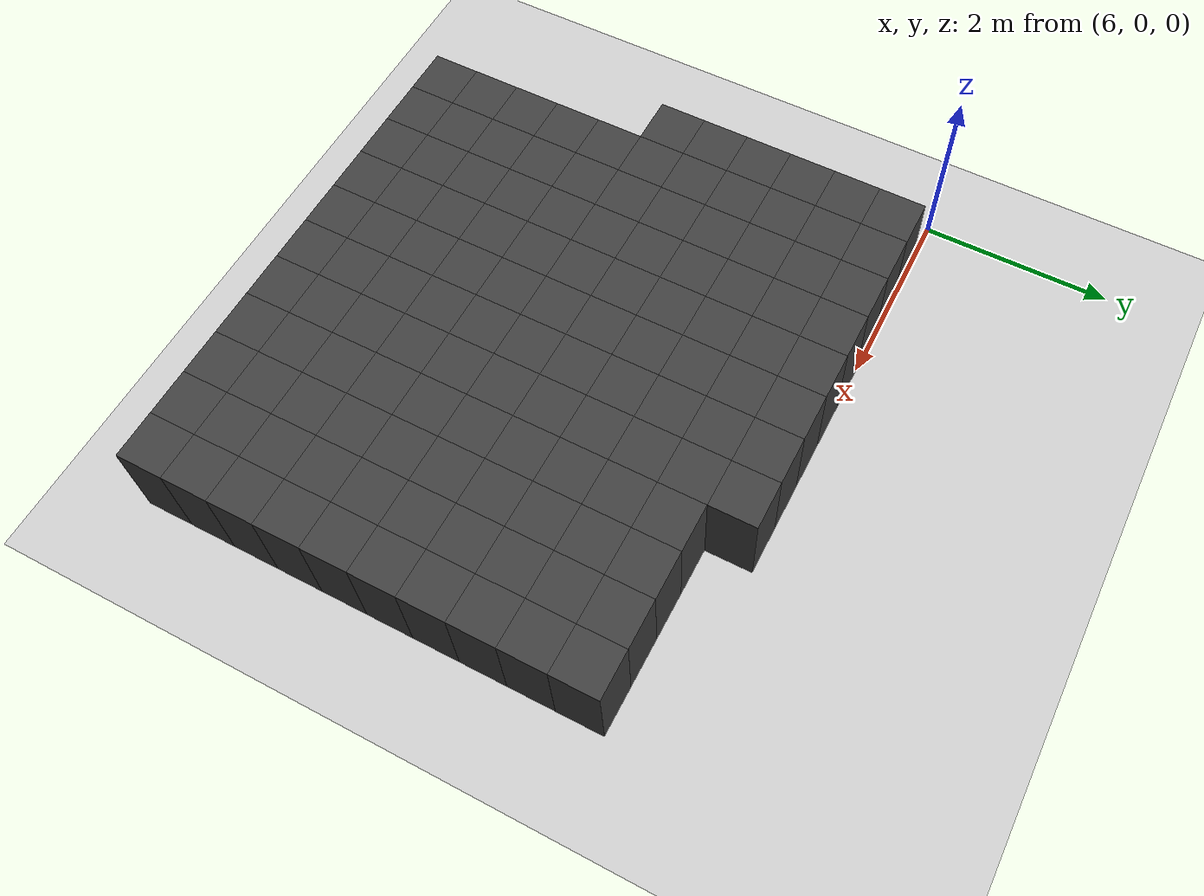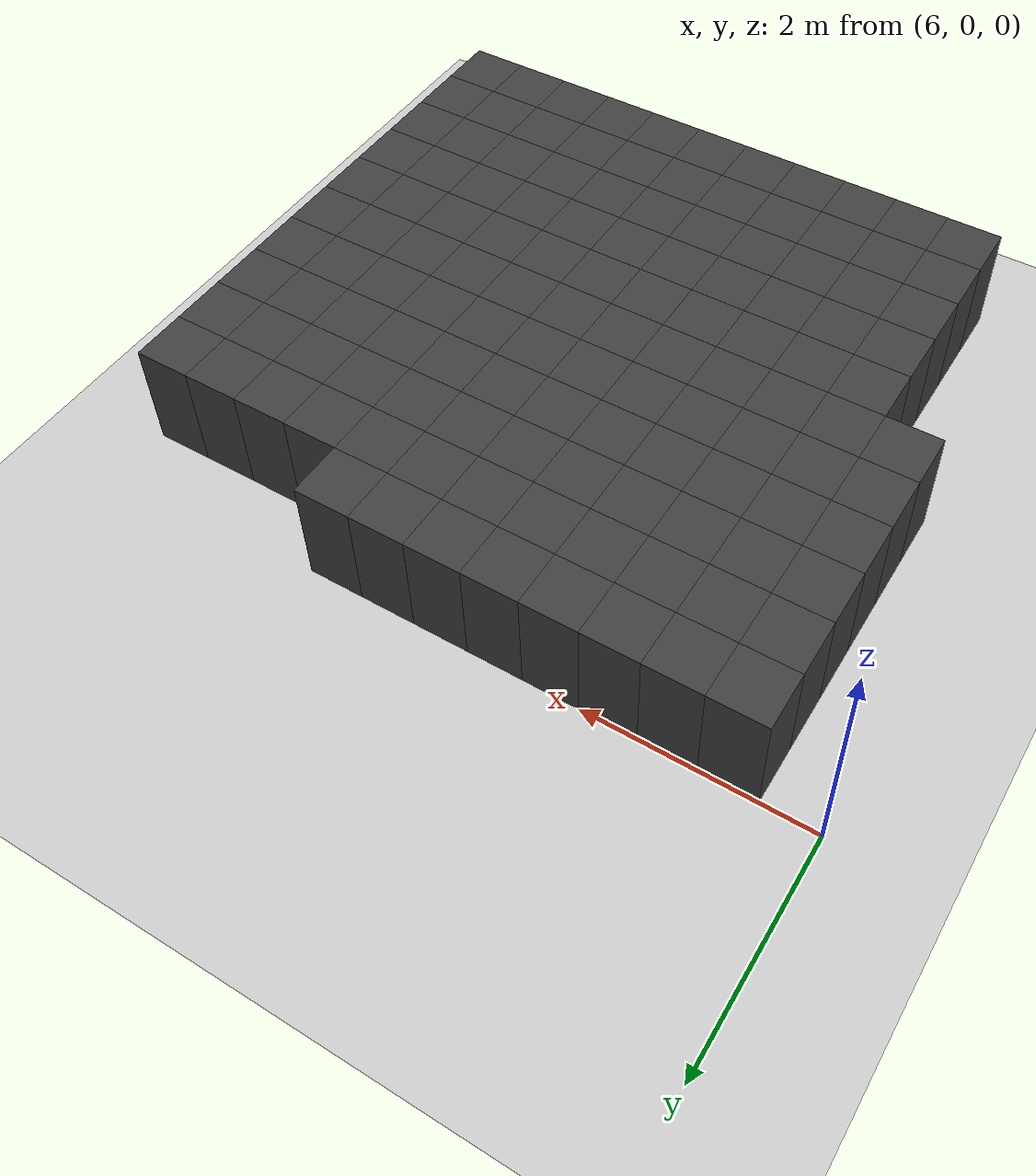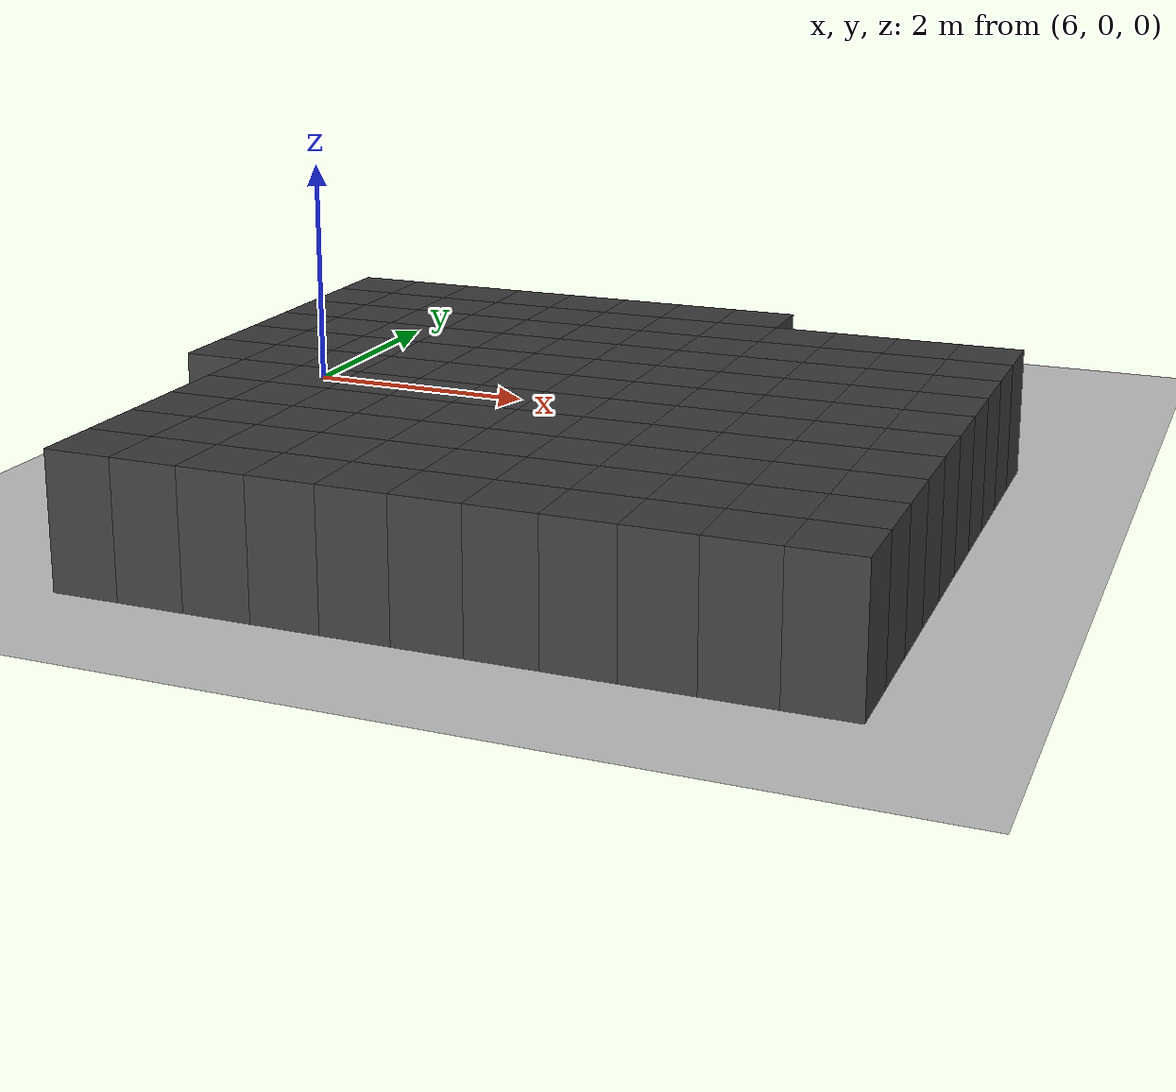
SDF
<sdf version="1.7">
 <world name="map_12818">
  <model name="ground_plane">
   <static>true</static>
   <link name="link">
    <collision name="collision">
     <geometry><plane><normal>0 0 1</normal><size>200 200</size></plane></geometry>
    </collision>
    <visual name="visual">
     <geometry><plane><normal>0 0 1</normal><size>200 200</size></plane></geometry>
     <material><ambient>0.8 0.8 0.8 1</ambient><diffuse>0.8 0.8 0.8 1</diffuse></material>
    </visual>
   </link>
  </model>
  <model name="maze_environment">
   <static>true</static>
   <link name="wall_1123">
    <pose>6.750 -0.250 0.500 0 0 0</pose>
    <collision name="col"><geometry><box><size>0.5 0.5 1.0</size></box></geometry></collision>
    <visual name="vis">
     <geometry><box><size>0.5 0.5 1.0</size></box></geometry>
     <material><ambient>0.15 0.15 0.15 1</ambient><diffuse>0.25 0.25 0.25 1</diffuse></material>
    </visual>
   </link>
   <link name="wall_1124">
    <pose>7.250 -0.250 0.500 0 0 0</pose>
    <collision name="col"><geometry><box><size>0.5 0.5 1.0</size></box></geometry></collision>
    <visual name="vis">
     <geometry><box><size>0.5 0.5 1.0</size></box></geometry>
     <material><ambient>0.15 0.15 0.15 1</ambient><diffuse>0.25 0.25 0.25 1</diffuse></material>
    </visual>
   </link>
   <link name="wall_1125">
    <pose>7.750 -0.250 0.500 0 0 0</pose>
    <collision name="col"><geometry><box><size>0.5 0.5 1.0</size></box></geometry></collision>
    <visual name="vis">
     <geometry><box><size>0.5 0.5 1.0</size></box></geometry>
     <material><ambient>0.15 0.15 0.15 1</ambient><diffuse>0.25 0.25 0.25 1</diffuse></material>
    </visual>
   </link>
   <link name="wall_1126">
    <pose>8.250 -0.250 0.500 0 0 0</pose>
    <collision name="col"><geometry><box><size>0.5 0.5 1.0</size></box></geometry></collision>
    <visual name="vis">
     <geometry><box><size>0.5 0.5 1.0</size></box></geometry>
     <material><ambient>0.15 0.15 0.15 1</ambient><diffuse>0.25 0.25 0.25 1</diffuse></material>
    </visual>
   </link>
   <link name="wall_1127">
    <pose>8.750 -0.250 0.500 0 0 0</pose>
    <collision name="col"><geometry><box><size>0.5 0.5 1.0</size></box></geometry></collision>
    <visual name="vis">
     <geometry><box><size>0.5 0.5 1.0</size></box></geometry>
     <material><ambient>0.15 0.15 0.15 1</ambient><diffuse>0.25 0.25 0.25 1</diffuse></material>
    </visual>
   </link>
   <link name="wall_1128">
    <pose>9.250 -0.250 0.500 0 0 0</pose>
    <collision name="col"><geometry><box><size>0.5 0.5 1.0</size></box></geometry></collision>
    <visual name="vis">
     <geometry><box><size>0.5 0.5 1.0</size></box></geometry>
     <material><ambient>0.15 0.15 0.15 1</ambient><diffuse>0.25 0.25 0.25 1</diffuse></material>
    </visual>
   </link>
   <link name="wall_1129">
    <pose>9.750 -0.250 0.500 0 0 0</pose>
    <collision name="col"><geometry><box><size>0.5 0.5 1.0</size></box></geometry></collision>
    <visual name="vis">
     <geometry><box><size>0.5 0.5 1.0</size></box></geometry>
     <material><ambient>0.15 0.15 0.15 1</ambient><diffuse>0.25 0.25 0.25 1</diffuse></material>
    </visual>
   </link>
   <link name="wall_1130">
    <pose>10.250 -0.250 0.500 0 0 0</pose>
    <collision name="col"><geometry><box><size>0.5 0.5 1.0</size></box></geometry></collision>
    <visual name="vis">
     <geometry><box><size>0.5 0.5 1.0</size></box></geometry>
     <material><ambient>0.15 0.15 0.15 1</ambient><diffuse>0.25 0.25 0.25 1</diffuse></material>
    </visual>
   </link>
   <link name="wall_1166">
    <pose>6.750 -0.750 0.500 0 0 0</pose>
    <collision name="col"><geometry><box><size>0.5 0.5 1.0</size></box></geometry></collision>
    <visual name="vis">
     <geometry><box><size>0.5 0.5 1.0</size></box></geometry>
     <material><ambient>0.15 0.15 0.15 1</ambient><diffuse>0.25 0.25 0.25 1</diffuse></material>
    </visual>
   </link>
   <link name="wall_1167">
    <pose>7.250 -0.750 0.500 0 0 0</pose>
    <collision name="col"><geometry><box><size>0.5 0.5 1.0</size></box></geometry></collision>
    <visual name="vis">
     <geometry><box><size>0.5 0.5 1.0</size></box></geometry>
     <material><ambient>0.15 0.15 0.15 1</ambient><diffuse>0.25 0.25 0.25 1</diffuse></material>
    </visual>
   </link>
   <link name="wall_1168">
    <pose>7.750 -0.750 0.500 0 0 0</pose>
    <collision name="col"><geometry><box><size>0.5 0.5 1.0</size></box></geometry></collision>
    <visual name="vis">
     <geometry><box><size>0.5 0.5 1.0</size></box></geometry>
     <material><ambient>0.15 0.15 0.15 1</ambient><diffuse>0.25 0.25 0.25 1</diffuse></material>
    </visual>
   </link>
   <link name="wall_1169">
    <pose>8.250 -0.750 0.500 0 0 0</pose>
    <collision name="col"><geometry><box><size>0.5 0.5 1.0</size></box></geometry></collision>
    <visual name="vis">
     <geometry><box><size>0.5 0.5 1.0</size></box></geometry>
     <material><ambient>0.15 0.15 0.15 1</ambient><diffuse>0.25 0.25 0.25 1</diffuse></material>
    </visual>
   </link>
   <link name="wall_1170">
    <pose>8.750 -0.750 0.500 0 0 0</pose>
    <collision name="col"><geometry><box><size>0.5 0.5 1.0</size></box></geometry></collision>
    <visual name="vis">
     <geometry><box><size>0.5 0.5 1.0</size></box></geometry>
     <material><ambient>0.15 0.15 0.15 1</ambient><diffuse>0.25 0.25 0.25 1</diffuse></material>
    </visual>
   </link>
   <link name="wall_1171">
    <pose>9.250 -0.750 0.500 0 0 0</pose>
    <collision name="col"><geometry><box><size>0.5 0.5 1.0</size></box></geometry></collision>
    <visual name="vis">
     <geometry><box><size>0.5 0.5 1.0</size></box></geometry>
     <material><ambient>0.15 0.15 0.15 1</ambient><diffuse>0.25 0.25 0.25 1</diffuse></material>
    </visual>
   </link>
   <link name="wall_1172">
    <pose>9.750 -0.750 0.500 0 0 0</pose>
    <collision name="col"><geometry><box><size>0.5 0.5 1.0</size></box></geometry></collision>
    <visual name="vis">
     <geometry><box><size>0.5 0.5 1.0</size></box></geometry>
     <material><ambient>0.15 0.15 0.15 1</ambient><diffuse>0.25 0.25 0.25 1</diffuse></material>
    </visual>
   </link>
   <link name="wall_1173">
    <pose>10.250 -0.750 0.500 0 0 0</pose>
    <collision name="col"><geometry><box><size>0.5 0.5 1.0</size></box></geometry></collision>
    <visual name="vis">
     <geometry><box><size>0.5 0.5 1.0</size></box></geometry>
     <material><ambient>0.15 0.15 0.15 1</ambient><diffuse>0.25 0.25 0.25 1</diffuse></material>
    </visual>
   </link>
   <link name="wall_1174">
    <pose>10.750 -0.750 0.500 0 0 0</pose>
    <collision name="col"><geometry><box><size>0.5 0.5 1.0</size></box></geometry></collision>
    <visual name="vis">
     <geometry><box><size>0.5 0.5 1.0</size></box></geometry>
     <material><ambient>0.15 0.15 0.15 1</ambient><diffuse>0.25 0.25 0.25 1</diffuse></material>
    </visual>
   </link>
   <link name="wall_1175">
    <pose>11.250 -0.750 0.500 0 0 0</pose>
    <collision name="col"><geometry><box><size>0.5 0.5 1.0</size></box></geometry></collision>
    <visual name="vis">
     <geometry><box><size>0.5 0.5 1.0</size></box></geometry>
     <material><ambient>0.15 0.15 0.15 1</ambient><diffuse>0.25 0.25 0.25 1</diffuse></material>
    </visual>
   </link>
   <link name="wall_1176">
    <pose>11.750 -0.750 0.500 0 0 0</pose>
    <collision name="col"><geometry><box><size>0.5 0.5 1.0</size></box></geometry></collision>
    <visual name="vis">
     <geometry><box><size>0.5 0.5 1.0</size></box></geometry>
     <material><ambient>0.15 0.15 0.15 1</ambient><diffuse>0.25 0.25 0.25 1</diffuse></material>
    </visual>
   </link>
   <link name="wall_1177">
    <pose>12.250 -0.750 0.500 0 0 0</pose>
    <collision name="col"><geometry><box><size>0.5 0.5 1.0</size></box></geometry></collision>
    <visual name="vis">
     <geometry><box><size>0.5 0.5 1.0</size></box></geometry>
     <material><ambient>0.15 0.15 0.15 1</ambient><diffuse>0.25 0.25 0.25 1</diffuse></material>
    </visual>
   </link>
   <link name="wall_1209">
    <pose>6.750 -1.250 0.500 0 0 0</pose>
    <collision name="col"><geometry><box><size>0.5 0.5 1.0</size></box></geometry></collision>
    <visual name="vis">
     <geometry><box><size>0.5 0.5 1.0</size></box></geometry>
     <material><ambient>0.15 0.15 0.15 1</ambient><diffuse>0.25 0.25 0.25 1</diffuse></material>
    </visual>
   </link>
   <link name="wall_1210">
    <pose>7.250 -1.250 0.500 0 0 0</pose>
    <collision name="col"><geometry><box><size>0.5 0.5 1.0</size></box></geometry></collision>
    <visual name="vis">
     <geometry><box><size>0.5 0.5 1.0</size></box></geometry>
     <material><ambient>0.15 0.15 0.15 1</ambient><diffuse>0.25 0.25 0.25 1</diffuse></material>
    </visual>
   </link>
   <link name="wall_1211">
    <pose>7.750 -1.250 0.500 0 0 0</pose>
    <collision name="col"><geometry><box><size>0.5 0.5 1.0</size></box></geometry></collision>
    <visual name="vis">
     <geometry><box><size>0.5 0.5 1.0</size></box></geometry>
     <material><ambient>0.15 0.15 0.15 1</ambient><diffuse>0.25 0.25 0.25 1</diffuse></material>
    </visual>
   </link>
   <link name="wall_1212">
    <pose>8.250 -1.250 0.500 0 0 0</pose>
    <collision name="col"><geometry><box><size>0.5 0.5 1.0</size></box></geometry></collision>
    <visual name="vis">
     <geometry><box><size>0.5 0.5 1.0</size></box></geometry>
     <material><ambient>0.15 0.15 0.15 1</ambient><diffuse>0.25 0.25 0.25 1</diffuse></material>
    </visual>
   </link>
   <link name="wall_1213">
    <pose>8.750 -1.250 0.500 0 0 0</pose>
    <collision name="col"><geometry><box><size>0.5 0.5 1.0</size></box></geometry></collision>
    <visual name="vis">
     <geometry><box><size>0.5 0.5 1.0</size></box></geometry>
     <material><ambient>0.15 0.15 0.15 1</ambient><diffuse>0.25 0.25 0.25 1</diffuse></material>
    </visual>
   </link>
   <link name="wall_1214">
    <pose>9.250 -1.250 0.500 0 0 0</pose>
    <collision name="col"><geometry><box><size>0.5 0.5 1.0</size></box></geometry></collision>
    <visual name="vis">
     <geometry><box><size>0.5 0.5 1.0</size></box></geometry>
     <material><ambient>0.15 0.15 0.15 1</ambient><diffuse>0.25 0.25 0.25 1</diffuse></material>
    </visual>
   </link>
   <link name="wall_1215">
    <pose>9.750 -1.250 0.500 0 0 0</pose>
    <collision name="col"><geometry><box><size>0.5 0.5 1.0</size></box></geometry></collision>
    <visual name="vis">
     <geometry><box><size>0.5 0.5 1.0</size></box></geometry>
     <material><ambient>0.15 0.15 0.15 1</ambient><diffuse>0.25 0.25 0.25 1</diffuse></material>
    </visual>
   </link>
   <link name="wall_1216">
    <pose>10.250 -1.250 0.500 0 0 0</pose>
    <collision name="col"><geometry><box><size>0.5 0.5 1.0</size></box></geometry></collision>
    <visual name="vis">
     <geometry><box><size>0.5 0.5 1.0</size></box></geometry>
     <material><ambient>0.15 0.15 0.15 1</ambient><diffuse>0.25 0.25 0.25 1</diffuse></material>
    </visual>
   </link>
   <link name="wall_1217">
    <pose>10.750 -1.250 0.500 0 0 0</pose>
    <collision name="col"><geometry><box><size>0.5 0.5 1.0</size></box></geometry></collision>
    <visual name="vis">
     <geometry><box><size>0.5 0.5 1.0</size></box></geometry>
     <material><ambient>0.15 0.15 0.15 1</ambient><diffuse>0.25 0.25 0.25 1</diffuse></material>
    </visual>
   </link>
   <link name="wall_1218">
    <pose>11.250 -1.250 0.500 0 0 0</pose>
    <collision name="col"><geometry><box><size>0.5 0.5 1.0</size></box></geometry></collision>
    <visual name="vis">
     <geometry><box><size>0.5 0.5 1.0</size></box></geometry>
     <material><ambient>0.15 0.15 0.15 1</ambient><diffuse>0.25 0.25 0.25 1</diffuse></material>
    </visual>
   </link>
   <link name="wall_1219">
    <pose>11.750 -1.250 0.500 0 0 0</pose>
    <collision name="col"><geometry><box><size>0.5 0.5 1.0</size></box></geometry></collision>
    <visual name="vis">
     <geometry><box><size>0.5 0.5 1.0</size></box></geometry>
     <material><ambient>0.15 0.15 0.15 1</ambient><diffuse>0.25 0.25 0.25 1</diffuse></material>
    </visual>
   </link>
   <link name="wall_1220">
    <pose>12.250 -1.250 0.500 0 0 0</pose>
    <collision name="col"><geometry><box><size>0.5 0.5 1.0</size></box></geometry></collision>
    <visual name="vis">
     <geometry><box><size>0.5 0.5 1.0</size></box></geometry>
     <material><ambient>0.15 0.15 0.15 1</ambient><diffuse>0.25 0.25 0.25 1</diffuse></material>
    </visual>
   </link>
   <link name="wall_1246">
    <pose>6.750 -1.750 0.500 0 0 0</pose>
    <collision name="col"><geometry><box><size>0.5 0.5 1.0</size></box></geometry></collision>
    <visual name="vis">
     <geometry><box><size>0.5 0.5 1.0</size></box></geometry>
     <material><ambient>0.15 0.15 0.15 1</ambient><diffuse>0.25 0.25 0.25 1</diffuse></material>
    </visual>
   </link>
   <link name="wall_1247">
    <pose>7.250 -1.750 0.500 0 0 0</pose>
    <collision name="col"><geometry><box><size>0.5 0.5 1.0</size></box></geometry></collision>
    <visual name="vis">
     <geometry><box><size>0.5 0.5 1.0</size></box></geometry>
     <material><ambient>0.15 0.15 0.15 1</ambient><diffuse>0.25 0.25 0.25 1</diffuse></material>
    </visual>
   </link>
   <link name="wall_1248">
    <pose>7.750 -1.750 0.500 0 0 0</pose>
    <collision name="col"><geometry><box><size>0.5 0.5 1.0</size></box></geometry></collision>
    <visual name="vis">
     <geometry><box><size>0.5 0.5 1.0</size></box></geometry>
     <material><ambient>0.15 0.15 0.15 1</ambient><diffuse>0.25 0.25 0.25 1</diffuse></material>
    </visual>
   </link>
   <link name="wall_1249">
    <pose>8.250 -1.750 0.500 0 0 0</pose>
    <collision name="col"><geometry><box><size>0.5 0.5 1.0</size></box></geometry></collision>
    <visual name="vis">
     <geometry><box><size>0.5 0.5 1.0</size></box></geometry>
     <material><ambient>0.15 0.15 0.15 1</ambient><diffuse>0.25 0.25 0.25 1</diffuse></material>
    </visual>
   </link>
   <link name="wall_1250">
    <pose>8.750 -1.750 0.500 0 0 0</pose>
    <collision name="col"><geometry><box><size>0.5 0.5 1.0</size></box></geometry></collision>
    <visual name="vis">
     <geometry><box><size>0.5 0.5 1.0</size></box></geometry>
     <material><ambient>0.15 0.15 0.15 1</ambient><diffuse>0.25 0.25 0.25 1</diffuse></material>
    </visual>
   </link>
   <link name="wall_1251">
    <pose>9.250 -1.750 0.500 0 0 0</pose>
    <collision name="col"><geometry><box><size>0.5 0.5 1.0</size></box></geometry></collision>
    <visual name="vis">
     <geometry><box><size>0.5 0.5 1.0</size></box></geometry>
     <material><ambient>0.15 0.15 0.15 1</ambient><diffuse>0.25 0.25 0.25 1</diffuse></material>
    </visual>
   </link>
   <link name="wall_1252">
    <pose>9.750 -1.750 0.500 0 0 0</pose>
    <collision name="col"><geometry><box><size>0.5 0.5 1.0</size></box></geometry></collision>
    <visual name="vis">
     <geometry><box><size>0.5 0.5 1.0</size></box></geometry>
     <material><ambient>0.15 0.15 0.15 1</ambient><diffuse>0.25 0.25 0.25 1</diffuse></material>
    </visual>
   </link>
   <link name="wall_1253">
    <pose>10.250 -1.750 0.500 0 0 0</pose>
    <collision name="col"><geometry><box><size>0.5 0.5 1.0</size></box></geometry></collision>
    <visual name="vis">
     <geometry><box><size>0.5 0.5 1.0</size></box></geometry>
     <material><ambient>0.15 0.15 0.15 1</ambient><diffuse>0.25 0.25 0.25 1</diffuse></material>
    </visual>
   </link>
   <link name="wall_1254">
    <pose>10.750 -1.750 0.500 0 0 0</pose>
    <collision name="col"><geometry><box><size>0.5 0.5 1.0</size></box></geometry></collision>
    <visual name="vis">
     <geometry><box><size>0.5 0.5 1.0</size></box></geometry>
     <material><ambient>0.15 0.15 0.15 1</ambient><diffuse>0.25 0.25 0.25 1</diffuse></material>
    </visual>
   </link>
   <link name="wall_1255">
    <pose>11.250 -1.750 0.500 0 0 0</pose>
    <collision name="col"><geometry><box><size>0.5 0.5 1.0</size></box></geometry></collision>
    <visual name="vis">
     <geometry><box><size>0.5 0.5 1.0</size></box></geometry>
     <material><ambient>0.15 0.15 0.15 1</ambient><diffuse>0.25 0.25 0.25 1</diffuse></material>
    </visual>
   </link>
   <link name="wall_1256">
    <pose>11.750 -1.750 0.500 0 0 0</pose>
    <collision name="col"><geometry><box><size>0.5 0.5 1.0</size></box></geometry></collision>
    <visual name="vis">
     <geometry><box><size>0.5 0.5 1.0</size></box></geometry>
     <material><ambient>0.15 0.15 0.15 1</ambient><diffuse>0.25 0.25 0.25 1</diffuse></material>
    </visual>
   </link>
   <link name="wall_1257">
    <pose>12.250 -1.750 0.500 0 0 0</pose>
    <collision name="col"><geometry><box><size>0.5 0.5 1.0</size></box></geometry></collision>
    <visual name="vis">
     <geometry><box><size>0.5 0.5 1.0</size></box></geometry>
     <material><ambient>0.15 0.15 0.15 1</ambient><diffuse>0.25 0.25 0.25 1</diffuse></material>
    </visual>
   </link>
   <link name="wall_1283">
    <pose>6.750 -2.250 0.500 0 0 0</pose>
    <collision name="col"><geometry><box><size>0.5 0.5 1.0</size></box></geometry></collision>
    <visual name="vis">
     <geometry><box><size>0.5 0.5 1.0</size></box></geometry>
     <material><ambient>0.15 0.15 0.15 1</ambient><diffuse>0.25 0.25 0.25 1</diffuse></material>
    </visual>
   </link>
   <link name="wall_1284">
    <pose>7.250 -2.250 0.500 0 0 0</pose>
    <collision name="col"><geometry><box><size>0.5 0.5 1.0</size></box></geometry></collision>
    <visual name="vis">
     <geometry><box><size>0.5 0.5 1.0</size></box></geometry>
     <material><ambient>0.15 0.15 0.15 1</ambient><diffuse>0.25 0.25 0.25 1</diffuse></material>
    </visual>
   </link>
   <link name="wall_1285">
    <pose>7.750 -2.250 0.500 0 0 0</pose>
    <collision name="col"><geometry><box><size>0.5 0.5 1.0</size></box></geometry></collision>
    <visual name="vis">
     <geometry><box><size>0.5 0.5 1.0</size></box></geometry>
     <material><ambient>0.15 0.15 0.15 1</ambient><diffuse>0.25 0.25 0.25 1</diffuse></material>
    </visual>
   </link>
   <link name="wall_1286">
    <pose>8.250 -2.250 0.500 0 0 0</pose>
    <collision name="col"><geometry><box><size>0.5 0.5 1.0</size></box></geometry></collision>
    <visual name="vis">
     <geometry><box><size>0.5 0.5 1.0</size></box></geometry>
     <material><ambient>0.15 0.15 0.15 1</ambient><diffuse>0.25 0.25 0.25 1</diffuse></material>
    </visual>
   </link>
   <link name="wall_1287">
    <pose>8.750 -2.250 0.500 0 0 0</pose>
    <collision name="col"><geometry><box><size>0.5 0.5 1.0</size></box></geometry></collision>
    <visual name="vis">
     <geometry><box><size>0.5 0.5 1.0</size></box></geometry>
     <material><ambient>0.15 0.15 0.15 1</ambient><diffuse>0.25 0.25 0.25 1</diffuse></material>
    </visual>
   </link>
   <link name="wall_1288">
    <pose>9.250 -2.250 0.500 0 0 0</pose>
    <collision name="col"><geometry><box><size>0.5 0.5 1.0</size></box></geometry></collision>
    <visual name="vis">
     <geometry><box><size>0.5 0.5 1.0</size></box></geometry>
     <material><ambient>0.15 0.15 0.15 1</ambient><diffuse>0.25 0.25 0.25 1</diffuse></material>
    </visual>
   </link>
   <link name="wall_1289">
    <pose>9.750 -2.250 0.500 0 0 0</pose>
    <collision name="col"><geometry><box><size>0.5 0.5 1.0</size></box></geometry></collision>
    <visual name="vis">
     <geometry><box><size>0.5 0.5 1.0</size></box></geometry>
     <material><ambient>0.15 0.15 0.15 1</ambient><diffuse>0.25 0.25 0.25 1</diffuse></material>
    </visual>
   </link>
   <link name="wall_1290">
    <pose>10.250 -2.250 0.500 0 0 0</pose>
    <collision name="col"><geometry><box><size>0.5 0.5 1.0</size></box></geometry></collision>
    <visual name="vis">
     <geometry><box><size>0.5 0.5 1.0</size></box></geometry>
     <material><ambient>0.15 0.15 0.15 1</ambient><diffuse>0.25 0.25 0.25 1</diffuse></material>
    </visual>
   </link>
   <link name="wall_1291">
    <pose>10.750 -2.250 0.500 0 0 0</pose>
    <collision name="col"><geometry><box><size>0.5 0.5 1.0</size></box></geometry></collision>
    <visual name="vis">
     <geometry><box><size>0.5 0.5 1.0</size></box></geometry>
     <material><ambient>0.15 0.15 0.15 1</ambient><diffuse>0.25 0.25 0.25 1</diffuse></material>
    </visual>
   </link>
   <link name="wall_1292">
    <pose>11.250 -2.250 0.500 0 0 0</pose>
    <collision name="col"><geometry><box><size>0.5 0.5 1.0</size></box></geometry></collision>
    <visual name="vis">
     <geometry><box><size>0.5 0.5 1.0</size></box></geometry>
     <material><ambient>0.15 0.15 0.15 1</ambient><diffuse>0.25 0.25 0.25 1</diffuse></material>
    </visual>
   </link>
   <link name="wall_1293">
    <pose>11.750 -2.250 0.500 0 0 0</pose>
    <collision name="col"><geometry><box><size>0.5 0.5 1.0</size></box></geometry></collision>
    <visual name="vis">
     <geometry><box><size>0.5 0.5 1.0</size></box></geometry>
     <material><ambient>0.15 0.15 0.15 1</ambient><diffuse>0.25 0.25 0.25 1</diffuse></material>
    </visual>
   </link>
   <link name="wall_1294">
    <pose>12.250 -2.250 0.500 0 0 0</pose>
    <collision name="col"><geometry><box><size>0.5 0.5 1.0</size></box></geometry></collision>
    <visual name="vis">
     <geometry><box><size>0.5 0.5 1.0</size></box></geometry>
     <material><ambient>0.15 0.15 0.15 1</ambient><diffuse>0.25 0.25 0.25 1</diffuse></material>
    </visual>
   </link>
   <link name="wall_1324">
    <pose>6.750 -2.750 0.500 0 0 0</pose>
    <collision name="col"><geometry><box><size>0.5 0.5 1.0</size></box></geometry></collision>
    <visual name="vis">
     <geometry><box><size>0.5 0.5 1.0</size></box></geometry>
     <material><ambient>0.15 0.15 0.15 1</ambient><diffuse>0.25 0.25 0.25 1</diffuse></material>
    </visual>
   </link>
   <link name="wall_1325">
    <pose>7.250 -2.750 0.500 0 0 0</pose>
    <collision name="col"><geometry><box><size>0.5 0.5 1.0</size></box></geometry></collision>
    <visual name="vis">
     <geometry><box><size>0.5 0.5 1.0</size></box></geometry>
     <material><ambient>0.15 0.15 0.15 1</ambient><diffuse>0.25 0.25 0.25 1</diffuse></material>
    </visual>
   </link>
   <link name="wall_1326">
    <pose>7.750 -2.750 0.500 0 0 0</pose>
    <collision name="col"><geometry><box><size>0.5 0.5 1.0</size></box></geometry></collision>
    <visual name="vis">
     <geometry><box><size>0.5 0.5 1.0</size></box></geometry>
     <material><ambient>0.15 0.15 0.15 1</ambient><diffuse>0.25 0.25 0.25 1</diffuse></material>
    </visual>
   </link>
   <link name="wall_1327">
    <pose>8.250 -2.750 0.500 0 0 0</pose>
    <collision name="col"><geometry><box><size>0.5 0.5 1.0</size></box></geometry></collision>
    <visual name="vis">
     <geometry><box><size>0.5 0.5 1.0</size></box></geometry>
     <material><ambient>0.15 0.15 0.15 1</ambient><diffuse>0.25 0.25 0.25 1</diffuse></material>
    </visual>
   </link>
   <link name="wall_1328">
    <pose>8.750 -2.750 0.500 0 0 0</pose>
    <collision name="col"><geometry><box><size>0.5 0.5 1.0</size></box></geometry></collision>
    <visual name="vis">
     <geometry><box><size>0.5 0.5 1.0</size></box></geometry>
     <material><ambient>0.15 0.15 0.15 1</ambient><diffuse>0.25 0.25 0.25 1</diffuse></material>
    </visual>
   </link>
   <link name="wall_1329">
    <pose>9.250 -2.750 0.500 0 0 0</pose>
    <collision name="col"><geometry><box><size>0.5 0.5 1.0</size></box></geometry></collision>
    <visual name="vis">
     <geometry><box><size>0.5 0.5 1.0</size></box></geometry>
     <material><ambient>0.15 0.15 0.15 1</ambient><diffuse>0.25 0.25 0.25 1</diffuse></material>
    </visual>
   </link>
   <link name="wall_1330">
    <pose>9.750 -2.750 0.500 0 0 0</pose>
    <collision name="col"><geometry><box><size>0.5 0.5 1.0</size></box></geometry></collision>
    <visual name="vis">
     <geometry><box><size>0.5 0.5 1.0</size></box></geometry>
     <material><ambient>0.15 0.15 0.15 1</ambient><diffuse>0.25 0.25 0.25 1</diffuse></material>
    </visual>
   </link>
   <link name="wall_1331">
    <pose>10.250 -2.750 0.500 0 0 0</pose>
    <collision name="col"><geometry><box><size>0.5 0.5 1.0</size></box></geometry></collision>
    <visual name="vis">
     <geometry><box><size>0.5 0.5 1.0</size></box></geometry>
     <material><ambient>0.15 0.15 0.15 1</ambient><diffuse>0.25 0.25 0.25 1</diffuse></material>
    </visual>
   </link>
   <link name="wall_1332">
    <pose>10.750 -2.750 0.500 0 0 0</pose>
    <collision name="col"><geometry><box><size>0.5 0.5 1.0</size></box></geometry></collision>
    <visual name="vis">
     <geometry><box><size>0.5 0.5 1.0</size></box></geometry>
     <material><ambient>0.15 0.15 0.15 1</ambient><diffuse>0.25 0.25 0.25 1</diffuse></material>
    </visual>
   </link>
   <link name="wall_1333">
    <pose>11.250 -2.750 0.500 0 0 0</pose>
    <collision name="col"><geometry><box><size>0.5 0.5 1.0</size></box></geometry></collision>
    <visual name="vis">
     <geometry><box><size>0.5 0.5 1.0</size></box></geometry>
     <material><ambient>0.15 0.15 0.15 1</ambient><diffuse>0.25 0.25 0.25 1</diffuse></material>
    </visual>
   </link>
   <link name="wall_1334">
    <pose>11.750 -2.750 0.500 0 0 0</pose>
    <collision name="col"><geometry><box><size>0.5 0.5 1.0</size></box></geometry></collision>
    <visual name="vis">
     <geometry><box><size>0.5 0.5 1.0</size></box></geometry>
     <material><ambient>0.15 0.15 0.15 1</ambient><diffuse>0.25 0.25 0.25 1</diffuse></material>
    </visual>
   </link>
   <link name="wall_1335">
    <pose>12.250 -2.750 0.500 0 0 0</pose>
    <collision name="col"><geometry><box><size>0.5 0.5 1.0</size></box></geometry></collision>
    <visual name="vis">
     <geometry><box><size>0.5 0.5 1.0</size></box></geometry>
     <material><ambient>0.15 0.15 0.15 1</ambient><diffuse>0.25 0.25 0.25 1</diffuse></material>
    </visual>
   </link>
   <link name="wall_1357">
    <pose>7.250 -3.250 0.500 0 0 0</pose>
    <collision name="col"><geometry><box><size>0.5 0.5 1.0</size></box></geometry></collision>
    <visual name="vis">
     <geometry><box><size>0.5 0.5 1.0</size></box></geometry>
     <material><ambient>0.15 0.15 0.15 1</ambient><diffuse>0.25 0.25 0.25 1</diffuse></material>
    </visual>
   </link>
   <link name="wall_1358">
    <pose>7.750 -3.250 0.500 0 0 0</pose>
    <collision name="col"><geometry><box><size>0.5 0.5 1.0</size></box></geometry></collision>
    <visual name="vis">
     <geometry><box><size>0.5 0.5 1.0</size></box></geometry>
     <material><ambient>0.15 0.15 0.15 1</ambient><diffuse>0.25 0.25 0.25 1</diffuse></material>
    </visual>
   </link>
   <link name="wall_1359">
    <pose>8.250 -3.250 0.500 0 0 0</pose>
    <collision name="col"><geometry><box><size>0.5 0.5 1.0</size></box></geometry></collision>
    <visual name="vis">
     <geometry><box><size>0.5 0.5 1.0</size></box></geometry>
     <material><ambient>0.15 0.15 0.15 1</ambient><diffuse>0.25 0.25 0.25 1</diffuse></material>
    </visual>
   </link>
   <link name="wall_1360">
    <pose>8.750 -3.250 0.500 0 0 0</pose>
    <collision name="col"><geometry><box><size>0.5 0.5 1.0</size></box></geometry></collision>
    <visual name="vis">
     <geometry><box><size>0.5 0.5 1.0</size></box></geometry>
     <material><ambient>0.15 0.15 0.15 1</ambient><diffuse>0.25 0.25 0.25 1</diffuse></material>
    </visual>
   </link>
   <link name="wall_1361">
    <pose>9.250 -3.250 0.500 0 0 0</pose>
    <collision name="col"><geometry><box><size>0.5 0.5 1.0</size></box></geometry></collision>
    <visual name="vis">
     <geometry><box><size>0.5 0.5 1.0</size></box></geometry>
     <material><ambient>0.15 0.15 0.15 1</ambient><diffuse>0.25 0.25 0.25 1</diffuse></material>
    </visual>
   </link>
   <link name="wall_1362">
    <pose>9.750 -3.250 0.500 0 0 0</pose>
    <collision name="col"><geometry><box><size>0.5 0.5 1.0</size></box></geometry></collision>
    <visual name="vis">
     <geometry><box><size>0.5 0.5 1.0</size></box></geometry>
     <material><ambient>0.15 0.15 0.15 1</ambient><diffuse>0.25 0.25 0.25 1</diffuse></material>
    </visual>
   </link>
   <link name="wall_1363">
    <pose>10.250 -3.250 0.500 0 0 0</pose>
    <collision name="col"><geometry><box><size>0.5 0.5 1.0</size></box></geometry></collision>
    <visual name="vis">
     <geometry><box><size>0.5 0.5 1.0</size></box></geometry>
     <material><ambient>0.15 0.15 0.15 1</ambient><diffuse>0.25 0.25 0.25 1</diffuse></material>
    </visual>
   </link>
   <link name="wall_1364">
    <pose>10.750 -3.250 0.500 0 0 0</pose>
    <collision name="col"><geometry><box><size>0.5 0.5 1.0</size></box></geometry></collision>
    <visual name="vis">
     <geometry><box><size>0.5 0.5 1.0</size></box></geometry>
     <material><ambient>0.15 0.15 0.15 1</ambient><diffuse>0.25 0.25 0.25 1</diffuse></material>
    </visual>
   </link>
   <link name="wall_1365">
    <pose>11.250 -3.250 0.500 0 0 0</pose>
    <collision name="col"><geometry><box><size>0.5 0.5 1.0</size></box></geometry></collision>
    <visual name="vis">
     <geometry><box><size>0.5 0.5 1.0</size></box></geometry>
     <material><ambient>0.15 0.15 0.15 1</ambient><diffuse>0.25 0.25 0.25 1</diffuse></material>
    </visual>
   </link>
   <link name="wall_1366">
    <pose>11.750 -3.250 0.500 0 0 0</pose>
    <collision name="col"><geometry><box><size>0.5 0.5 1.0</size></box></geometry></collision>
    <visual name="vis">
     <geometry><box><size>0.5 0.5 1.0</size></box></geometry>
     <material><ambient>0.15 0.15 0.15 1</ambient><diffuse>0.25 0.25 0.25 1</diffuse></material>
    </visual>
   </link>
   <link name="wall_1367">
    <pose>12.250 -3.250 0.500 0 0 0</pose>
    <collision name="col"><geometry><box><size>0.5 0.5 1.0</size></box></geometry></collision>
    <visual name="vis">
     <geometry><box><size>0.5 0.5 1.0</size></box></geometry>
     <material><ambient>0.15 0.15 0.15 1</ambient><diffuse>0.25 0.25 0.25 1</diffuse></material>
    </visual>
   </link>
   <link name="wall_1389">
    <pose>7.250 -3.750 0.500 0 0 0</pose>
    <collision name="col"><geometry><box><size>0.5 0.5 1.0</size></box></geometry></collision>
    <visual name="vis">
     <geometry><box><size>0.5 0.5 1.0</size></box></geometry>
     <material><ambient>0.15 0.15 0.15 1</ambient><diffuse>0.25 0.25 0.25 1</diffuse></material>
    </visual>
   </link>
   <link name="wall_1390">
    <pose>7.750 -3.750 0.500 0 0 0</pose>
    <collision name="col"><geometry><box><size>0.5 0.5 1.0</size></box></geometry></collision>
    <visual name="vis">
     <geometry><box><size>0.5 0.5 1.0</size></box></geometry>
     <material><ambient>0.15 0.15 0.15 1</ambient><diffuse>0.25 0.25 0.25 1</diffuse></material>
    </visual>
   </link>
   <link name="wall_1391">
    <pose>8.250 -3.750 0.500 0 0 0</pose>
    <collision name="col"><geometry><box><size>0.5 0.5 1.0</size></box></geometry></collision>
    <visual name="vis">
     <geometry><box><size>0.5 0.5 1.0</size></box></geometry>
     <material><ambient>0.15 0.15 0.15 1</ambient><diffuse>0.25 0.25 0.25 1</diffuse></material>
    </visual>
   </link>
   <link name="wall_1392">
    <pose>8.750 -3.750 0.500 0 0 0</pose>
    <collision name="col"><geometry><box><size>0.5 0.5 1.0</size></box></geometry></collision>
    <visual name="vis">
     <geometry><box><size>0.5 0.5 1.0</size></box></geometry>
     <material><ambient>0.15 0.15 0.15 1</ambient><diffuse>0.25 0.25 0.25 1</diffuse></material>
    </visual>
   </link>
   <link name="wall_1393">
    <pose>9.250 -3.750 0.500 0 0 0</pose>
    <collision name="col"><geometry><box><size>0.5 0.5 1.0</size></box></geometry></collision>
    <visual name="vis">
     <geometry><box><size>0.5 0.5 1.0</size></box></geometry>
     <material><ambient>0.15 0.15 0.15 1</ambient><diffuse>0.25 0.25 0.25 1</diffuse></material>
    </visual>
   </link>
   <link name="wall_1394">
    <pose>9.750 -3.750 0.500 0 0 0</pose>
    <collision name="col"><geometry><box><size>0.5 0.5 1.0</size></box></geometry></collision>
    <visual name="vis">
     <geometry><box><size>0.5 0.5 1.0</size></box></geometry>
     <material><ambient>0.15 0.15 0.15 1</ambient><diffuse>0.25 0.25 0.25 1</diffuse></material>
    </visual>
   </link>
   <link name="wall_1395">
    <pose>10.250 -3.750 0.500 0 0 0</pose>
    <collision name="col"><geometry><box><size>0.5 0.5 1.0</size></box></geometry></collision>
    <visual name="vis">
     <geometry><box><size>0.5 0.5 1.0</size></box></geometry>
     <material><ambient>0.15 0.15 0.15 1</ambient><diffuse>0.25 0.25 0.25 1</diffuse></material>
    </visual>
   </link>
   <link name="wall_1396">
    <pose>10.750 -3.750 0.500 0 0 0</pose>
    <collision name="col"><geometry><box><size>0.5 0.5 1.0</size></box></geometry></collision>
    <visual name="vis">
     <geometry><box><size>0.5 0.5 1.0</size></box></geometry>
     <material><ambient>0.15 0.15 0.15 1</ambient><diffuse>0.25 0.25 0.25 1</diffuse></material>
    </visual>
   </link>
   <link name="wall_1397">
    <pose>11.250 -3.750 0.500 0 0 0</pose>
    <collision name="col"><geometry><box><size>0.5 0.5 1.0</size></box></geometry></collision>
    <visual name="vis">
     <geometry><box><size>0.5 0.5 1.0</size></box></geometry>
     <material><ambient>0.15 0.15 0.15 1</ambient><diffuse>0.25 0.25 0.25 1</diffuse></material>
    </visual>
   </link>
   <link name="wall_1398">
    <pose>11.750 -3.750 0.500 0 0 0</pose>
    <collision name="col"><geometry><box><size>0.5 0.5 1.0</size></box></geometry></collision>
    <visual name="vis">
     <geometry><box><size>0.5 0.5 1.0</size></box></geometry>
     <material><ambient>0.15 0.15 0.15 1</ambient><diffuse>0.25 0.25 0.25 1</diffuse></material>
    </visual>
   </link>
   <link name="wall_1399">
    <pose>12.250 -3.750 0.500 0 0 0</pose>
    <collision name="col"><geometry><box><size>0.5 0.5 1.0</size></box></geometry></collision>
    <visual name="vis">
     <geometry><box><size>0.5 0.5 1.0</size></box></geometry>
     <material><ambient>0.15 0.15 0.15 1</ambient><diffuse>0.25 0.25 0.25 1</diffuse></material>
    </visual>
   </link>
   <link name="wall_1425">
    <pose>7.250 -4.250 0.500 0 0 0</pose>
    <collision name="col"><geometry><box><size>0.5 0.5 1.0</size></box></geometry></collision>
    <visual name="vis">
     <geometry><box><size>0.5 0.5 1.0</size></box></geometry>
     <material><ambient>0.15 0.15 0.15 1</ambient><diffuse>0.25 0.25 0.25 1</diffuse></material>
    </visual>
   </link>
   <link name="wall_1426">
    <pose>7.750 -4.250 0.500 0 0 0</pose>
    <collision name="col"><geometry><box><size>0.5 0.5 1.0</size></box></geometry></collision>
    <visual name="vis">
     <geometry><box><size>0.5 0.5 1.0</size></box></geometry>
     <material><ambient>0.15 0.15 0.15 1</ambient><diffuse>0.25 0.25 0.25 1</diffuse></material>
    </visual>
   </link>
   <link name="wall_1427">
    <pose>8.250 -4.250 0.500 0 0 0</pose>
    <collision name="col"><geometry><box><size>0.5 0.5 1.0</size></box></geometry></collision>
    <visual name="vis">
     <geometry><box><size>0.5 0.5 1.0</size></box></geometry>
     <material><ambient>0.15 0.15 0.15 1</ambient><diffuse>0.25 0.25 0.25 1</diffuse></material>
    </visual>
   </link>
   <link name="wall_1428">
    <pose>8.750 -4.250 0.500 0 0 0</pose>
    <collision name="col"><geometry><box><size>0.5 0.5 1.0</size></box></geometry></collision>
    <visual name="vis">
     <geometry><box><size>0.5 0.5 1.0</size></box></geometry>
     <material><ambient>0.15 0.15 0.15 1</ambient><diffuse>0.25 0.25 0.25 1</diffuse></material>
    </visual>
   </link>
   <link name="wall_1429">
    <pose>9.250 -4.250 0.500 0 0 0</pose>
    <collision name="col"><geometry><box><size>0.5 0.5 1.0</size></box></geometry></collision>
    <visual name="vis">
     <geometry><box><size>0.5 0.5 1.0</size></box></geometry>
     <material><ambient>0.15 0.15 0.15 1</ambient><diffuse>0.25 0.25 0.25 1</diffuse></material>
    </visual>
   </link>
   <link name="wall_1430">
    <pose>9.750 -4.250 0.500 0 0 0</pose>
    <collision name="col"><geometry><box><size>0.5 0.5 1.0</size></box></geometry></collision>
    <visual name="vis">
     <geometry><box><size>0.5 0.5 1.0</size></box></geometry>
     <material><ambient>0.15 0.15 0.15 1</ambient><diffuse>0.25 0.25 0.25 1</diffuse></material>
    </visual>
   </link>
   <link name="wall_1431">
    <pose>10.250 -4.250 0.500 0 0 0</pose>
    <collision name="col"><geometry><box><size>0.5 0.5 1.0</size></box></geometry></collision>
    <visual name="vis">
     <geometry><box><size>0.5 0.5 1.0</size></box></geometry>
     <material><ambient>0.15 0.15 0.15 1</ambient><diffuse>0.25 0.25 0.25 1</diffuse></material>
    </visual>
   </link>
   <link name="wall_1432">
    <pose>10.750 -4.250 0.500 0 0 0</pose>
    <collision name="col"><geometry><box><size>0.5 0.5 1.0</size></box></geometry></collision>
    <visual name="vis">
     <geometry><box><size>0.5 0.5 1.0</size></box></geometry>
     <material><ambient>0.15 0.15 0.15 1</ambient><diffuse>0.25 0.25 0.25 1</diffuse></material>
    </visual>
   </link>
   <link name="wall_1433">
    <pose>11.250 -4.250 0.500 0 0 0</pose>
    <collision name="col"><geometry><box><size>0.5 0.5 1.0</size></box></geometry></collision>
    <visual name="vis">
     <geometry><box><size>0.5 0.5 1.0</size></box></geometry>
     <material><ambient>0.15 0.15 0.15 1</ambient><diffuse>0.25 0.25 0.25 1</diffuse></material>
    </visual>
   </link>
   <link name="wall_1434">
    <pose>11.750 -4.250 0.500 0 0 0</pose>
    <collision name="col"><geometry><box><size>0.5 0.5 1.0</size></box></geometry></collision>
    <visual name="vis">
     <geometry><box><size>0.5 0.5 1.0</size></box></geometry>
     <material><ambient>0.15 0.15 0.15 1</ambient><diffuse>0.25 0.25 0.25 1</diffuse></material>
    </visual>
   </link>
   <link name="wall_1435">
    <pose>12.250 -4.250 0.500 0 0 0</pose>
    <collision name="col"><geometry><box><size>0.5 0.5 1.0</size></box></geometry></collision>
    <visual name="vis">
     <geometry><box><size>0.5 0.5 1.0</size></box></geometry>
     <material><ambient>0.15 0.15 0.15 1</ambient><diffuse>0.25 0.25 0.25 1</diffuse></material>
    </visual>
   </link>
   <link name="wall_1461">
    <pose>7.250 -4.750 0.500 0 0 0</pose>
    <collision name="col"><geometry><box><size>0.5 0.5 1.0</size></box></geometry></collision>
    <visual name="vis">
     <geometry><box><size>0.5 0.5 1.0</size></box></geometry>
     <material><ambient>0.15 0.15 0.15 1</ambient><diffuse>0.25 0.25 0.25 1</diffuse></material>
    </visual>
   </link>
   <link name="wall_1462">
    <pose>7.750 -4.750 0.500 0 0 0</pose>
    <collision name="col"><geometry><box><size>0.5 0.5 1.0</size></box></geometry></collision>
    <visual name="vis">
     <geometry><box><size>0.5 0.5 1.0</size></box></geometry>
     <material><ambient>0.15 0.15 0.15 1</ambient><diffuse>0.25 0.25 0.25 1</diffuse></material>
    </visual>
   </link>
   <link name="wall_1463">
    <pose>8.250 -4.750 0.500 0 0 0</pose>
    <collision name="col"><geometry><box><size>0.5 0.5 1.0</size></box></geometry></collision>
    <visual name="vis">
     <geometry><box><size>0.5 0.5 1.0</size></box></geometry>
     <material><ambient>0.15 0.15 0.15 1</ambient><diffuse>0.25 0.25 0.25 1</diffuse></material>
    </visual>
   </link>
   <link name="wall_1464">
    <pose>8.750 -4.750 0.500 0 0 0</pose>
    <collision name="col"><geometry><box><size>0.5 0.5 1.0</size></box></geometry></collision>
    <visual name="vis">
     <geometry><box><size>0.5 0.5 1.0</size></box></geometry>
     <material><ambient>0.15 0.15 0.15 1</ambient><diffuse>0.25 0.25 0.25 1</diffuse></material>
    </visual>
   </link>
   <link name="wall_1465">
    <pose>9.250 -4.750 0.500 0 0 0</pose>
    <collision name="col"><geometry><box><size>0.5 0.5 1.0</size></box></geometry></collision>
    <visual name="vis">
     <geometry><box><size>0.5 0.5 1.0</size></box></geometry>
     <material><ambient>0.15 0.15 0.15 1</ambient><diffuse>0.25 0.25 0.25 1</diffuse></material>
    </visual>
   </link>
   <link name="wall_1466">
    <pose>9.750 -4.750 0.500 0 0 0</pose>
    <collision name="col"><geometry><box><size>0.5 0.5 1.0</size></box></geometry></collision>
    <visual name="vis">
     <geometry><box><size>0.5 0.5 1.0</size></box></geometry>
     <material><ambient>0.15 0.15 0.15 1</ambient><diffuse>0.25 0.25 0.25 1</diffuse></material>
    </visual>
   </link>
   <link name="wall_1467">
    <pose>10.250 -4.750 0.500 0 0 0</pose>
    <collision name="col"><geometry><box><size>0.5 0.5 1.0</size></box></geometry></collision>
    <visual name="vis">
     <geometry><box><size>0.5 0.5 1.0</size></box></geometry>
     <material><ambient>0.15 0.15 0.15 1</ambient><diffuse>0.25 0.25 0.25 1</diffuse></material>
    </visual>
   </link>
   <link name="wall_1468">
    <pose>10.750 -4.750 0.500 0 0 0</pose>
    <collision name="col"><geometry><box><size>0.5 0.5 1.0</size></box></geometry></collision>
    <visual name="vis">
     <geometry><box><size>0.5 0.5 1.0</size></box></geometry>
     <material><ambient>0.15 0.15 0.15 1</ambient><diffuse>0.25 0.25 0.25 1</diffuse></material>
    </visual>
   </link>
   <link name="wall_1469">
    <pose>11.250 -4.750 0.500 0 0 0</pose>
    <collision name="col"><geometry><box><size>0.5 0.5 1.0</size></box></geometry></collision>
    <visual name="vis">
     <geometry><box><size>0.5 0.5 1.0</size></box></geometry>
     <material><ambient>0.15 0.15 0.15 1</ambient><diffuse>0.25 0.25 0.25 1</diffuse></material>
    </visual>
   </link>
   <link name="wall_1470">
    <pose>11.750 -4.750 0.500 0 0 0</pose>
    <collision name="col"><geometry><box><size>0.5 0.5 1.0</size></box></geometry></collision>
    <visual name="vis">
     <geometry><box><size>0.5 0.5 1.0</size></box></geometry>
     <material><ambient>0.15 0.15 0.15 1</ambient><diffuse>0.25 0.25 0.25 1</diffuse></material>
    </visual>
   </link>
   <link name="wall_1471">
    <pose>12.250 -4.750 0.500 0 0 0</pose>
    <collision name="col"><geometry><box><size>0.5 0.5 1.0</size></box></geometry></collision>
    <visual name="vis">
     <geometry><box><size>0.5 0.5 1.0</size></box></geometry>
     <material><ambient>0.15 0.15 0.15 1</ambient><diffuse>0.25 0.25 0.25 1</diffuse></material>
    </visual>
   </link>
   <link name="wall_1492">
    <pose>7.250 -5.250 0.500 0 0 0</pose>
    <collision name="col"><geometry><box><size>0.5 0.5 1.0</size></box></geometry></collision>
    <visual name="vis">
     <geometry><box><size>0.5 0.5 1.0</size></box></geometry>
     <material><ambient>0.15 0.15 0.15 1</ambient><diffuse>0.25 0.25 0.25 1</diffuse></material>
    </visual>
   </link>
   <link name="wall_1493">
    <pose>7.750 -5.250 0.500 0 0 0</pose>
    <collision name="col"><geometry><box><size>0.5 0.5 1.0</size></box></geometry></collision>
    <visual name="vis">
     <geometry><box><size>0.5 0.5 1.0</size></box></geometry>
     <material><ambient>0.15 0.15 0.15 1</ambient><diffuse>0.25 0.25 0.25 1</diffuse></material>
    </visual>
   </link>
   <link name="wall_1494">
    <pose>8.250 -5.250 0.500 0 0 0</pose>
    <collision name="col"><geometry><box><size>0.5 0.5 1.0</size></box></geometry></collision>
    <visual name="vis">
     <geometry><box><size>0.5 0.5 1.0</size></box></geometry>
     <material><ambient>0.15 0.15 0.15 1</ambient><diffuse>0.25 0.25 0.25 1</diffuse></material>
    </visual>
   </link>
   <link name="wall_1495">
    <pose>8.750 -5.250 0.500 0 0 0</pose>
    <collision name="col"><geometry><box><size>0.5 0.5 1.0</size></box></geometry></collision>
    <visual name="vis">
     <geometry><box><size>0.5 0.5 1.0</size></box></geometry>
     <material><ambient>0.15 0.15 0.15 1</ambient><diffuse>0.25 0.25 0.25 1</diffuse></material>
    </visual>
   </link>
   <link name="wall_1496">
    <pose>9.250 -5.250 0.500 0 0 0</pose>
    <collision name="col"><geometry><box><size>0.5 0.5 1.0</size></box></geometry></collision>
    <visual name="vis">
     <geometry><box><size>0.5 0.5 1.0</size></box></geometry>
     <material><ambient>0.15 0.15 0.15 1</ambient><diffuse>0.25 0.25 0.25 1</diffuse></material>
    </visual>
   </link>
   <link name="wall_1497">
    <pose>9.750 -5.250 0.500 0 0 0</pose>
    <collision name="col"><geometry><box><size>0.5 0.5 1.0</size></box></geometry></collision>
    <visual name="vis">
     <geometry><box><size>0.5 0.5 1.0</size></box></geometry>
     <material><ambient>0.15 0.15 0.15 1</ambient><diffuse>0.25 0.25 0.25 1</diffuse></material>
    </visual>
   </link>
   <link name="wall_1498">
    <pose>10.250 -5.250 0.500 0 0 0</pose>
    <collision name="col"><geometry><box><size>0.5 0.5 1.0</size></box></geometry></collision>
    <visual name="vis">
     <geometry><box><size>0.5 0.5 1.0</size></box></geometry>
     <material><ambient>0.15 0.15 0.15 1</ambient><diffuse>0.25 0.25 0.25 1</diffuse></material>
    </visual>
   </link>
   <link name="wall_1499">
    <pose>10.750 -5.250 0.500 0 0 0</pose>
    <collision name="col"><geometry><box><size>0.5 0.5 1.0</size></box></geometry></collision>
    <visual name="vis">
     <geometry><box><size>0.5 0.5 1.0</size></box></geometry>
     <material><ambient>0.15 0.15 0.15 1</ambient><diffuse>0.25 0.25 0.25 1</diffuse></material>
    </visual>
   </link>
   <link name="wall_1500">
    <pose>11.250 -5.250 0.500 0 0 0</pose>
    <collision name="col"><geometry><box><size>0.5 0.5 1.0</size></box></geometry></collision>
    <visual name="vis">
     <geometry><box><size>0.5 0.5 1.0</size></box></geometry>
     <material><ambient>0.15 0.15 0.15 1</ambient><diffuse>0.25 0.25 0.25 1</diffuse></material>
    </visual>
   </link>
   <link name="wall_1501">
    <pose>11.750 -5.250 0.500 0 0 0</pose>
    <collision name="col"><geometry><box><size>0.5 0.5 1.0</size></box></geometry></collision>
    <visual name="vis">
     <geometry><box><size>0.5 0.5 1.0</size></box></geometry>
     <material><ambient>0.15 0.15 0.15 1</ambient><diffuse>0.25 0.25 0.25 1</diffuse></material>
    </visual>
   </link>
   <link name="wall_1502">
    <pose>12.250 -5.250 0.500 0 0 0</pose>
    <collision name="col"><geometry><box><size>0.5 0.5 1.0</size></box></geometry></collision>
    <visual name="vis">
     <geometry><box><size>0.5 0.5 1.0</size></box></geometry>
     <material><ambient>0.15 0.15 0.15 1</ambient><diffuse>0.25 0.25 0.25 1</diffuse></material>
    </visual>
   </link>
  </model>
 </world>
</sdf>
